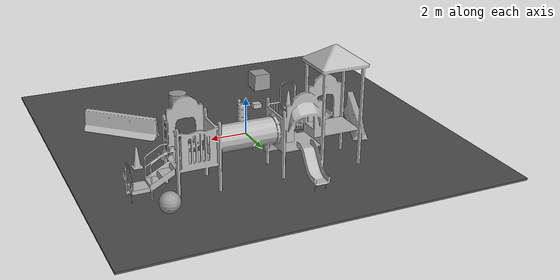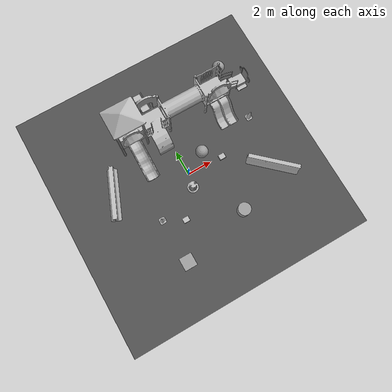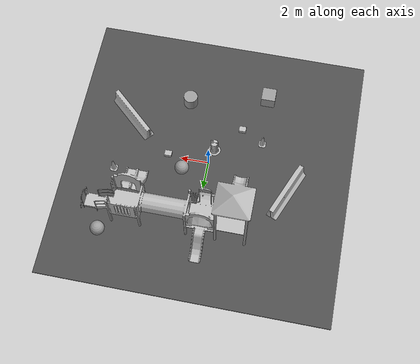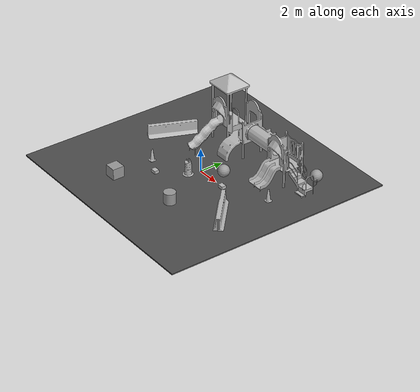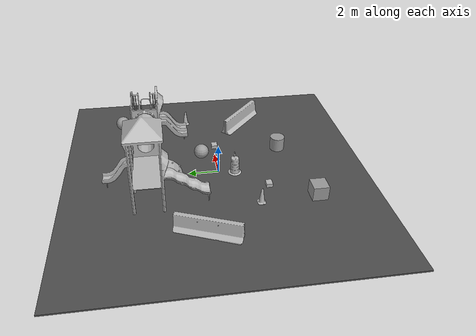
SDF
<sdf version="1.7">
 <world name="default">
  <light name="sun" type="directional">
   <pose>0 0 10 0 -0 0</pose>
   <diffuse>0.8 0.8 0.8 1</diffuse>
   <specular>0.2 0.2 0.2 1</specular>
   <attenuation>
    <range>1000</range>
    <constant>0.9</constant>
    <linear>0.01</linear>
    <quadratic>0.001</quadratic>
   </attenuation>
   <direction>-0.5 0.1 -0.9</direction>
   <spot><inner_angle>0</inner_angle><outer_angle>0</outer_angle><falloff>0</falloff></spot>
  </light>
  <gravity>0 0 -9.8</gravity>
  <magnetic_field>6e-06 2.3e-05 -4.2e-05</magnetic_field>
  <atmosphere type="adiabatic"/>
  <physics type="ode">
   <max_step_size>0.001</max_step_size>
   <real_time_factor>1</real_time_factor>
   <real_time_update_rate>1000</real_time_update_rate>
  </physics>
  <scene><ambient>0.4 0.4 0.4 1</ambient><background>0.7 0.7 0.7 1</background><shadows>1</shadows></scene>
  <spherical_coordinates>
   <surface_model>EARTH_WGS84</surface_model>
   <latitude_deg>0</latitude_deg>
   <longitude_deg>0</longitude_deg>
   <elevation>0</elevation>
   <heading_deg>0</heading_deg>
  </spherical_coordinates>
  <light name="user_point_light_0" type="point">
   <pose>1232.31 2420.35 1 0 -0 0</pose>
   <diffuse>0.5 0.5 0.5 1</diffuse>
   <specular>0.1 0.1 0.1 1</specular>
   <attenuation>
    <range>20</range>
    <constant>0.5</constant>
    <linear>0.01</linear>
    <quadratic>0.001</quadratic>
   </attenuation>
   <cast_shadows>0</cast_shadows>
   <direction>0 0 -1</direction>
  </light>
  <model name="jersey_barrier">
   <static>1</static>
   <link name="link">
    <visual name="visual">
     <geometry><mesh><uri>model://jersey_barrier/meshes/jersey_barrier.dae</uri></mesh></geometry>
    </visual>
    <collision name="upright">
     <pose>0 0 0.5715 0 -0 0</pose>
     <geometry><box><size>4.06542 0.3063 1.143</size></box></geometry>
    </collision>
    <collision name="base">
     <pose>0 0 0.032258 0 -0 0</pose>
     <geometry><box><size>4.06542 0.8107 0.064516</size></box></geometry>
    </collision>
    <collision name="base2">
     <pose>0 0 0.1 0 -0 0</pose>
     <geometry><box><size>4.06542 0.65 0.1</size></box></geometry>
    </collision>
    <collision name="base3">
     <pose>0 0 0.2 0 -0 0</pose>
     <geometry><box><size>4.06542 0.5 0.1</size></box></geometry>
    </collision>
    <collision name="left-angle">
     <pose>0 -0.224 0.2401 0.9 -0 0</pose>
     <geometry><box><size>4.06542 0.5 0.064516</size></box></geometry>
    </collision>
    <collision name="right-angle">
     <pose>0 0.224 0.2401 -0.9 0 0</pose>
     <geometry><box><size>4.06542 0.5 0.064516</size></box></geometry>
    </collision>
   </link>
   <pose>6.03181 -2.53059 0 0 0 -0.739261</pose>
  </model>
  <model name="cardboard_box">
   <pose>2.92146 -0.100748 0.15 0 -0 0</pose>
   <link name="link">
    <inertial>
     <mass>2</mass>
     <inertia>
      <ixx>0.0416667</ixx>
      <ixy>0</ixy>
      <ixz>0</ixz>
      <iyy>0.0566667</iyy>
      <iyz>0</iyz>
      <izz>0.0683333</izz>
     </inertia>
    </inertial>
    <collision name="collision">
     <geometry><box><size>0.5 0.4 0.3</size></box></geometry>
     <surface>
      <friction><ode><mu>1</mu><mu2>1</mu2></ode></friction>
      <contact><ode><kp>1e+07</kp><kd>1</kd><min_depth>0.001</min_depth><max_vel>0.1</max_vel></ode></contact>
     </surface>
    </collision>
    <visual name="visual">
     <pose>0 0 -0.15 0 -0 0</pose>
     <geometry>
      <mesh><uri>model://cardboard_box/meshes/cardboard_box.dae</uri><scale>1.25932 1.00745 0.755591</scale></mesh>
     </geometry>
    </visual>
   </link>
  </model>
  <model name="cardboard_box_0">
   <pose>-1.93843 -3.0075 0.15 0 -0 0</pose>
   <link name="link">
    <inertial>
     <mass>2</mass>
     <inertia>
      <ixx>0.0416667</ixx>
      <ixy>0</ixy>
      <ixz>0</ixz>
      <iyy>0.0566667</iyy>
      <iyz>0</iyz>
      <izz>0.0683333</izz>
     </inertia>
    </inertial>
    <collision name="collision">
     <geometry><box><size>0.5 0.4 0.3</size></box></geometry>
     <surface>
      <friction><ode><mu>1</mu><mu2>1</mu2></ode></friction>
      <contact><ode><kp>1e+07</kp><kd>1</kd><min_depth>0.001</min_depth><max_vel>0.1</max_vel></ode></contact>
     </surface>
    </collision>
    <visual name="visual">
     <pose>0 0 -0.15 0 -0 0</pose>
     <geometry>
      <mesh><uri>model://cardboard_box/meshes/cardboard_box.dae</uri><scale>1.25932 1.00745 0.755591</scale></mesh>
     </geometry>
    </visual>
   </link>
  </model>
  <model name="Construction Cone">
   <link name="link">
    <collision name="collision">
     <geometry>
      <mesh><scale>10 10 10</scale><uri>model://construction_cone/meshes/construction_cone.dae</uri></mesh>
     </geometry>
    </collision>
    <visual name="visual">
     <geometry>
      <mesh><scale>10 10 10</scale><uri>model://construction_cone/meshes/construction_cone.dae</uri></mesh>
     </geometry>
    </visual>
    <inertial>
     <inertia><ixx>1</ixx><ixy>0</ixy><ixz>0</ixz><iyy>1</iyy><iyz>0</iyz><izz>1</izz></inertia>
     <mass>1</mass>
    </inertial>
   </link>
   <pose>-3.52445 -2.17626 0 0 -0 0</pose>
  </model>
  <model name="jersey_barrier_0">
   <static>1</static>
   <link name="link">
    <visual name="visual">
     <geometry><mesh><uri>model://jersey_barrier/meshes/jersey_barrier.dae</uri></mesh></geometry>
    </visual>
    <collision name="upright">
     <pose>0 0 0.5715 0 -0 0</pose>
     <geometry><box><size>4.06542 0.3063 1.143</size></box></geometry>
    </collision>
    <collision name="base">
     <pose>0 0 0.032258 0 -0 0</pose>
     <geometry><box><size>4.06542 0.8107 0.064516</size></box></geometry>
    </collision>
    <collision name="base2">
     <pose>0 0 0.1 0 -0 0</pose>
     <geometry><box><size>4.06542 0.65 0.1</size></box></geometry>
    </collision>
    <collision name="base3">
     <pose>0 0 0.2 0 -0 0</pose>
     <geometry><box><size>4.06542 0.5 0.1</size></box></geometry>
    </collision>
    <collision name="left-angle">
     <pose>0 -0.224 0.2401 0.9 -0 0</pose>
     <geometry><box><size>4.06542 0.5 0.064516</size></box></geometry>
    </collision>
    <collision name="right-angle">
     <pose>0 0.224 0.2401 -0.9 0 0</pose>
     <geometry><box><size>4.06542 0.5 0.064516</size></box></geometry>
    </collision>
   </link>
   <pose>-5.7947 1.38734 0 0.049111 0.01628 1.18016</pose>
  </model>
  <model name="Construction Cone_clone">
   <link name="link">
    <collision name="collision">
     <geometry>
      <mesh><scale>10 10 10</scale><uri>model://construction_cone/meshes/construction_cone.dae</uri></mesh>
     </geometry>
    </collision>
    <visual name="visual">
     <geometry>
      <mesh><scale>10 10 10</scale><uri>model://construction_cone/meshes/construction_cone.dae</uri></mesh>
     </geometry>
    </visual>
    <inertial>
     <inertia><ixx>1</ixx><ixy>0</ixy><ixz>0</ixz><iyy>1</iyy><iyz>0</iyz><izz>1</izz></inertia>
     <mass>1</mass>
    </inertial>
   </link>
   <pose>6.46392 1.66612 0 0 -0 0</pose>
  </model>
  <model name="playground">
   <static>1</static>
   <link name="link">
    <collision name="collision">
     <geometry><mesh><uri>model://playground/meshes/playground.dae</uri></mesh></geometry>
    </collision>
    <visual name="visual">
     <geometry><mesh><uri>model://playground/meshes/playground.dae</uri></mesh></geometry>
    </visual>
   </link>
   <pose>1.99982 4.21481 0 0 -0 0</pose>
  </model>
  <model name="asphalt_plane">
   <static>1</static>
   <link name="link">
    <collision name="collision"><geometry><box><size>20 20 0.1</size></box></geometry></collision>
    <visual name="visual">
     <cast_shadows>0</cast_shadows>
     <geometry><box><size>20 20 0.1</size></box></geometry>
     <material>
      <script>
       <uri>model://asphalt_plane/materials/scripts</uri>
       <uri>model://asphalt_plane/materials/textures</uri>
       <name>vrc/asphalt</name>
      </script>
     </material>
    </visual>
   </link>
   <pose>-0.047194 0.159677 0 0 -0 0</pose>
  </model>
  <model name="unit_sphere">
   <pose>6.40498 6.42607 0.5 0 -0 0</pose>
   <link name="link">
    <inertial>
     <mass>1</mass>
     <inertia><ixx>0.1</ixx><ixy>0</ixy><ixz>0</ixz><iyy>0.1</iyy><iyz>0</iyz><izz>0.1</izz></inertia>
    </inertial>
    <collision name="collision"><geometry><sphere><radius>0.5</radius></sphere></geometry></collision>
    <visual name="visual">
     <geometry><sphere><radius>0.5</radius></sphere></geometry>
     <material>
      <script><name>Gazebo/Grey</name><uri>file://media/materials/scripts/gazebo.material</uri></script>
     </material>
    </visual>
   </link>
  </model>
  <model name="Construction Barrel">
   <link name="link">
    <inertial>
     <pose>0 0 0.4 0 -0 0</pose>
     <mass>500</mass>
     <inertia><ixx>51.2096</ixx><iyy>51.2096</iyy><izz>25</izz><ixy>0</ixy><ixz>0</ixz><iyz>0</iyz></inertia>
    </inertial>
    <collision name="collision">
     <geometry><mesh><uri>model://construction_barrel/meshes/construction_barrel.dae</uri></mesh></geometry>
    </collision>
    <visual name="visual">
     <geometry><mesh><uri>model://construction_barrel/meshes/construction_barrel.dae</uri></mesh></geometry>
    </visual>
   </link>
   <pose>-0.23505 -1.06291 0 0 -0 0</pose>
  </model>
  <model name="unit_box">
   <pose>-3.36933 -5.80534 0.5 0 -0 0</pose>
   <link name="link">
    <inertial>
     <mass>1</mass>
     <inertia>
      <ixx>0.166667</ixx>
      <ixy>0</ixy>
      <ixz>0</ixz>
      <iyy>0.166667</iyy>
      <iyz>0</iyz>
      <izz>0.166667</izz>
     </inertia>
    </inertial>
    <collision name="collision"><geometry><box><size>1 1 1</size></box></geometry></collision>
    <visual name="visual">
     <geometry><box><size>1 1 1</size></box></geometry>
     <material>
      <script><name>Gazebo/Grey</name><uri>file://media/materials/scripts/gazebo.material</uri></script>
     </material>
    </visual>
   </link>
  </model>
  <model name="unit_cylinder">
   <pose>2.19039 -4.53198 0.5 0 -0 0</pose>
   <link name="link">
    <inertial>
     <mass>1</mass>
     <inertia><ixx>0.145833</ixx><ixy>0</ixy><ixz>0</ixz><iyy>0.145833</iyy><iyz>0</iyz><izz>0.125</izz></inertia>
    </inertial>
    <collision name="collision">
     <geometry><cylinder><radius>0.5</radius><length>1</length></cylinder></geometry>
    </collision>
    <visual name="visual">
     <geometry><cylinder><radius>0.5</radius><length>1</length></cylinder></geometry>
     <material>
      <script><name>Gazebo/Grey</name><uri>file://media/materials/scripts/gazebo.material</uri></script>
     </material>
    </visual>
   </link>
  </model>
  <model name="unit_sphere_0">
   <pose>1.70767 0.953978 0.589755 0 -0 0</pose>
   <link name="link">
    <inertial>
     <mass>1</mass>
     <inertia><ixx>0.1</ixx><ixy>0</ixy><ixz>0</ixz><iyy>0.1</iyy><iyz>0</iyz><izz>0.1</izz></inertia>
    </inertial>
    <collision name="collision"><geometry><sphere><radius>0.5</radius></sphere></geometry></collision>
    <visual name="visual">
     <geometry><sphere><radius>0.5</radius></sphere></geometry>
     <material>
      <script><name>Gazebo/Grey</name><uri>file://media/materials/scripts/gazebo.material</uri></script>
     </material>
    </visual>
   </link>
  </model>
 </world>
</sdf>
